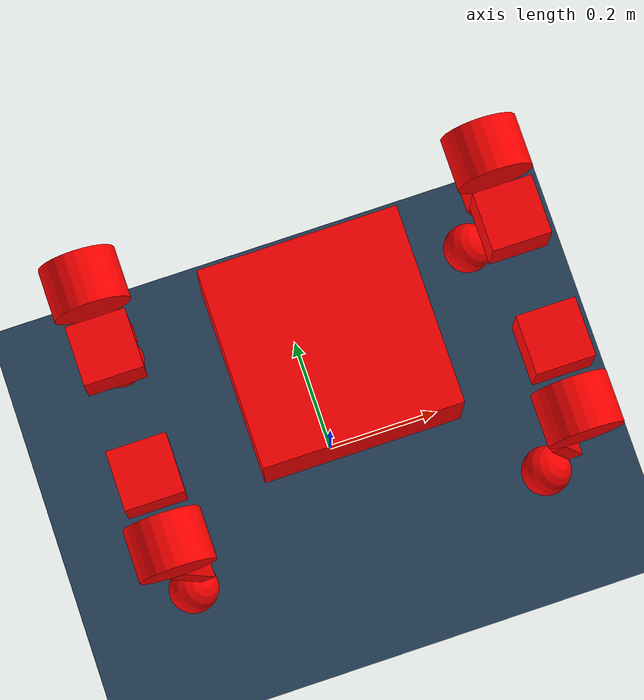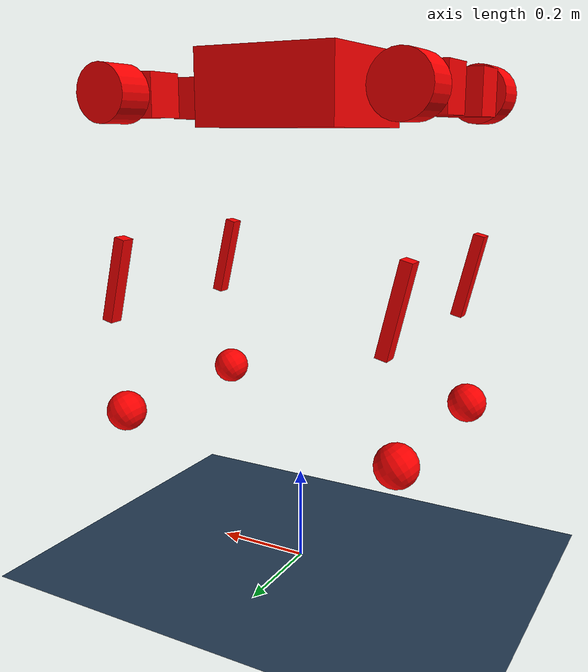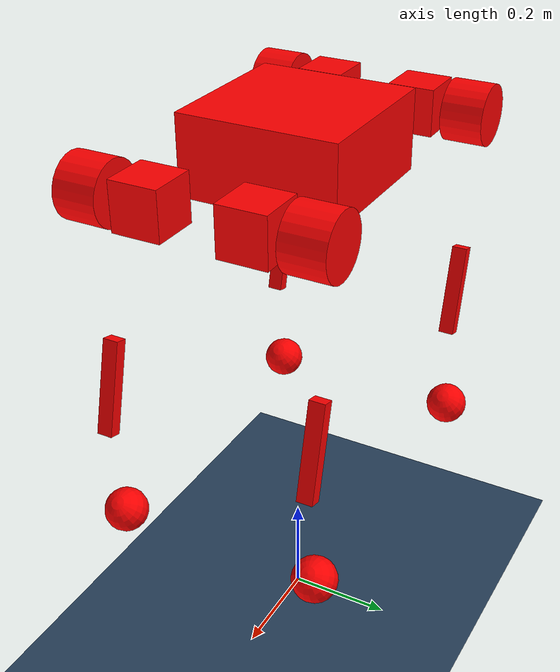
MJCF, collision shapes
<mujoco model="hje">
  <compiler angle="radian" meshdir="meshes/" />
  <option iterations="1" ls_iterations="5" timestep="0.002" integrator="Euler">
      <flag eulerdamp="disable"/>
  </option>

  <asset>
    <mesh name="base_link.obj" file="base_link.obj" />
    <mesh name="FL_HIP_LINK.obj" file="FL_HIP_LINK.obj" />
    <mesh name="FL_THIGH_LINK.obj" file="FL_THIGH_LINK.obj" />
    <mesh name="FL_CALF_LINK.obj" file="FL_CALF_LINK.obj" />
    <mesh name="FL_FOOT_LINK.obj" file="FL_FOOT_LINK.obj" />
    <mesh name="FR_HIP_LINK.obj" file="FR_HIP_LINK.obj" />
    <mesh name="FR_THIGH_LINK.obj" file="FR_THIGH_LINK.obj" />
    <mesh name="FR_CALF_LINK.obj" file="FR_CALF_LINK.obj" />
    <mesh name="FR_FOOT_LINK.obj" file="FR_FOOT_LINK.obj" />
    <mesh name="RL_HIP_LINK.obj" file="RL_HIP_LINK.obj" />
    <mesh name="RL_THIGH_LINK.obj" file="RL_THIGH_LINK.obj" />
    <mesh name="RL_CALF_LINK.obj" file="RL_CALF_LINK.obj" />
    <mesh name="RL_FOOT_LINK.obj" file="RL_FOOT_LINK.obj" />
    <mesh name="RR_HIP_LINK.obj" file="RR_HIP_LINK.obj" />
    <mesh name="RR_THIGH_LINK.obj" file="RR_THIGH_LINK.obj" />
    <mesh name="RR_CALF_LINK.obj" file="RR_CALF_LINK.obj" />
    <mesh name="RR_FOOT_LINK.obj" file="RR_FOOT_LINK.obj" />
    <mesh name="SHEET_METAL_LINK.obj" file="SHEET_METAL_LINK.obj" />
    <texture type="skybox" builtin="flat" rgb1="0 0 0" rgb2="0 0 0" width="512" height="3072"/>
    <texture type="2d" name="groundplane" builtin="checker" mark="edge" rgb1="0.2 0.3 0.4" rgb2="0.1 0.2 0.3" markrgb="0.8 0.8 0.8" width="300" height="300"/>
    <material name="groundplane" texture="groundplane" texuniform="true" texrepeat="5 5" reflectance="0.2"/>
  </asset>

  <worldbody>
    <light pos="0 0 10" dir="0 0 -1" diffuse="1 1 1"/>
    <light directional="true" diffuse=".8 .8 .8" pos="0 0 10" dir="0 0 -10"/>
    <geom name="floor" size="0 0 0.05" type="plane" material="groundplane" contype="0" conaffinity="1"/>

    <body name="base_link" pos="0 0 1" euler="0 0 0">
      <site name="imu" pos="0.0 0.0 0.0" group="5"/>
      <inertial pos="0 0 0" mass="21.304" diaginertia="0.1761 0.7064 0.8199"/>
      <freejoint name="root"/>
      <geom pos="0.0000 0.0000 0.0000" euler="0.0000 0.0000 0.0000" rgba="0.8667 0.9059 1.0000 1.0" group="1" type="mesh" mesh="base_link.obj" contype="0" conaffinity="0"/>
      <geom pos="0.0000 0.0000 0.0100" euler="0.0000 0.0000 0.0000" rgba="1 0 0 0.5" group="3" type="box" size="0.1500 0.1500 0.0750" />
      <body name="FL_HIP_LINK" pos="0.3085 0.0750 0.0000" euler="0.0000 0.0000 0.0000">
        <joint name="FL_HIP_JOINT" type="hinge" axis="1.0000 0.0000 0.0000" range="-1.01 1.01" damping="0" frictionloss="0"/>
        <inertial pos="0 0 0" mass="1.6116" diaginertia="0.0010 0.0021 0.0016"/>
        <geom pos="0.0000 0.0000 0.0000" euler="0.0000 0.0000 0.0000" rgba="0.8667 0.9059 1.0000 1.0" group="1" type="mesh" mesh="FL_HIP_LINK.obj" contype="0" conaffinity="0"/>
        <geom pos="0.0000 0.0200 0.0000" euler="0.0000 0.0000 0.0000" rgba="1 0 0 0.5" group="3" type="box" size="0.0450 0.0450 0.0450" />
        <body name="FL_THIGH_LINK" pos="0.0000 0.1250 0.0000" euler="0.0000 0.0000 0.0000">
          <joint name="FL_THIGH_JOINT" type="hinge" axis="0.0000 1.0000 0.0000" range="-2.36 3.14" damping="0" frictionloss="0"/>
          <inertial pos="0 0 0" mass="2.8949" diaginertia="0.0258 0.0258 0.0046"/>
          <geom pos="0.0000 0.0000 0.0000" euler="0.0000 0.0000 0.0000" rgba="0.8667 0.9059 1.0000 1.0" group="1" type="mesh" mesh="FL_THIGH_LINK.obj" contype="0" conaffinity="0"/>
          <geom pos="0.0000 0.0000 0.0000" euler="1.5710 0.0000 0.0000" rgba="1 0 0 0.5" group="3" type="cylinder" size="0.0580 0.0400" />
          <body name="FL_CALF_LINK" pos="0.0017 0.0000 -0.3300" euler="0.0000 0.0000 0.0000">
            <joint name="FL_CALF_JOINT" type="hinge" axis="0.0000 1.0000 0.0000" range="-2.8 -0.39" damping="0" frictionloss="0"/>
            <inertial pos="0 0 0" mass="0.4051" diaginertia="0.0040 0.0041 0.0001"/>
            <geom pos="0.0000 0.0000 0.0000" euler="0.0000 0.0000 0.0000" rgba="0.7922 0.8196 0.9294 1.0" group="1" type="mesh" mesh="FL_CALF_LINK.obj" contype="0" conaffinity="0"/>
            <geom pos="0.0100 0.0000 -0.0400" euler="0.0000 -0.2400 0.0000" rgba="1 0 0 0.5" group="3" type="box" size="0.0120 0.0150 0.0900" />
            <body name="FL_FOOT_LINK" pos="0.0023 0.0000 -0.3217" euler="0.0000 0.6573 0.0000">
              <inertial pos="0 0 0" mass="0.0673" diaginertia="0.0000 0.0000 0.0000"/>
              <geom pos="0.0000 0.0000 0.0000" euler="0.0000 0.0000 0.0000" rgba="0.7922 0.8196 0.9294 1.0" group="1" type="mesh" mesh="FL_FOOT_LINK.obj" contype="0" conaffinity="0"/>
              <geom pos="0.0000 0.0000 0.0000" euler="0.0000 0.0000 0.0000" rgba="1 0 0 0.5" group="3" type="sphere" size="0.0420" contype="1" conaffinity="0"/>
            </body>
          </body>
        </body>
      </body>
      <body name="FR_HIP_LINK" pos="0.3085 -0.0750 0.0000" euler="0.0000 0.0000 0.0000">
        <joint name="FR_HIP_JOINT" type="hinge" axis="1.0000 0.0000 0.0000" range="-1.01 1.01" damping="0" frictionloss="0"/>
        <inertial pos="0 0 0" mass="1.6116" diaginertia="0.0010 0.0021 0.0016"/>
        <geom pos="0.0000 0.0000 0.0000" euler="0.0000 0.0000 0.0000" rgba="0.8667 0.9059 1.0000 1.0" group="1" type="mesh" mesh="FR_HIP_LINK.obj" contype="0" conaffinity="0"/>
        <geom pos="0.0000 -0.0200 0.0000" euler="0.0000 0.0000 0.0000" rgba="1 0 0 0.5" group="3" type="box" size="0.0450 0.0450 0.0450" />
        <body name="FR_THIGH_LINK" pos="0.0000 -0.1250 0.0000" euler="0.0000 0.0000 0.0000">
          <joint name="FR_THIGH_JOINT" type="hinge" axis="0.0000 1.0000 0.0000" range="-2.36 3.14" damping="0" frictionloss="0"/>
          <inertial pos="0 0 0" mass="2.8949" diaginertia="0.0258 0.0258 0.0046"/>
          <geom pos="0.0000 0.0000 0.0000" euler="0.0000 0.0000 0.0000" rgba="0.8667 0.9059 1.0000 1.0" group="1" type="mesh" mesh="FR_THIGH_LINK.obj" contype="0" conaffinity="0"/>
          <geom pos="0.0000 0.0000 0.0000" euler="1.5710 0.0000 0.0000" rgba="1 0 0 0.5" group="3" type="cylinder" size="0.0580 0.0400" />
          <body name="FR_CALF_LINK" pos="0.0017 0.0000 -0.3300" euler="0.0000 0.0000 0.0000">
            <joint name="FR_CALF_JOINT" type="hinge" axis="0.0000 1.0000 0.0000" range="-2.8 -0.39" damping="0" frictionloss="0"/>
            <inertial pos="0 0 0" mass="0.4051" diaginertia="0.0040 0.0041 0.0001"/>
            <geom pos="0.0000 0.0000 0.0000" euler="0.0000 0.0000 0.0000" rgba="0.7922 0.8196 0.9294 1.0" group="1" type="mesh" mesh="FR_CALF_LINK.obj" contype="0" conaffinity="0"/>
            <geom pos="0.0100 0.0000 -0.0400" euler="0.0000 -0.2400 0.0000" rgba="1 0 0 0.5" group="3" type="box" size="0.0120 0.0150 0.0900" />
            <body name="FR_FOOT_LINK" pos="0.0023 0.0000 -0.3217" euler="0.0000 0.6573 0.0000">
              <inertial pos="0 0 0" mass="0.0673" diaginertia="0.0000 0.0000 0.0000"/>
              <geom pos="0.0000 0.0000 0.0000" euler="0.0000 0.0000 0.0000" rgba="0.7922 0.8196 0.9294 1.0" group="1" type="mesh" mesh="FR_FOOT_LINK.obj" contype="0" conaffinity="0"/>
              <geom pos="0.0000 0.0000 0.0000" euler="0.0000 0.0000 0.0000" rgba="1 0 0 0.5" group="3" type="sphere" size="0.0420" contype="1" conaffinity="0"/>
            </body>
          </body>
        </body>
      </body>
      <body name="RL_HIP_LINK" pos="-0.3085 0.0750 0.0000" euler="0.0000 0.0000 0.0000">
        <joint name="RL_HIP_JOINT" type="hinge" axis="1.0000 0.0000 0.0000" range="-1.01 1.01" damping="0" frictionloss="0"/>
        <inertial pos="0 0 0" mass="1.6116" diaginertia="0.0010 0.0021 0.0016"/>
        <geom pos="0.0000 0.0000 0.0000" euler="0.0000 0.0000 0.0000" rgba="0.7922 0.8196 0.9294 1.0" group="1" type="mesh" mesh="RL_HIP_LINK.obj" contype="0" conaffinity="0"/>
        <geom pos="0.0000 0.0200 0.0000" euler="0.0000 0.0000 0.0000" rgba="1 0 0 0.5" group="3" type="box" size="0.0450 0.0450 0.0450" />
        <body name="RL_THIGH_LINK" pos="0.0000 0.1250 0.0000" euler="0.0000 0.0000 0.0000">
          <joint name="RL_THIGH_JOINT" type="hinge" axis="0.0000 1.0000 0.0000" range="-2.36 3.14" damping="0" frictionloss="0"/>
          <inertial pos="0 0 0" mass="2.8949" diaginertia="0.0258 0.0258 0.0046"/>
          <geom pos="0.0000 0.0000 0.0000" euler="0.0000 0.0000 0.0000" rgba="0.8667 0.9059 1.0000 1.0" group="1" type="mesh" mesh="RL_THIGH_LINK.obj" contype="0" conaffinity="0"/>
          <geom pos="0.0000 0.0000 0.0000" euler="1.5710 0.0000 0.0000" rgba="1 0 0 0.5" group="3" type="cylinder" size="0.0580 0.0400" />
          <body name="RL_CALF_LINK" pos="0.0017 0.0000 -0.3300" euler="0.0000 0.0000 0.0000">
            <joint name="RL_CALF_JOINT" type="hinge" axis="0.0000 1.0000 0.0000" range="-2.8 -0.39" damping="0" frictionloss="0"/>
            <inertial pos="0 0 0" mass="0.4051" diaginertia="0.0040 0.0041 0.0001"/>
            <geom pos="0.0000 0.0000 0.0000" euler="0.0000 0.0000 0.0000" rgba="0.7922 0.8196 0.9294 1.0" group="1" type="mesh" mesh="RL_CALF_LINK.obj" contype="0" conaffinity="0"/>
            <geom pos="0.0100 0.0000 -0.0400" euler="0.0000 -0.2400 0.0000" rgba="1 0 0 0.5" group="3" type="box" size="0.0120 0.0150 0.0900" />
            <body name="RL_FOOT_LINK" pos="0.0023 0.0000 -0.3217" euler="0.0000 0.6573 0.0000">
              <inertial pos="0 0 0" mass="0.0673" diaginertia="0.0000 0.0000 0.0000"/>
              <geom pos="0.0000 0.0000 0.0000" euler="0.0000 0.0000 0.0000" rgba="0.7922 0.8196 0.9294 1.0" group="1" type="mesh" mesh="RL_FOOT_LINK.obj" contype="0" conaffinity="0"/>
              <geom pos="0.0000 0.0000 0.0000" euler="0.0000 0.0000 0.0000" rgba="1 0 0 0.5" group="3" type="sphere" size="0.0420" contype="1" conaffinity="0"/>
            </body>
          </body>
        </body>
      </body>
      <body name="RR_HIP_LINK" pos="-0.3085 -0.0750 0.0000" euler="0.0000 0.0000 0.0000">
        <joint name="RR_HIP_JOINT" type="hinge" axis="1.0000 0.0000 0.0000" range="-1.01 1.01" damping="0" frictionloss="0"/>
        <inertial pos="0 0 0" mass="1.6116" diaginertia="0.0010 0.0021 0.0016"/>
        <geom pos="0.0000 0.0000 0.0000" euler="0.0000 0.0000 0.0000" rgba="0.8667 0.9059 1.0000 1.0" group="1" type="mesh" mesh="RR_HIP_LINK.obj" contype="0" conaffinity="0"/>
        <geom pos="0.0000 -0.0200 0.0000" euler="0.0000 0.0000 0.0000" rgba="1 0 0 0.5" group="3" type="box" size="0.0450 0.0450 0.0450" />
        <body name="RR_THIGH_LINK" pos="0.0000 -0.1250 0.0000" euler="0.0000 0.0000 0.0000">
          <joint name="RR_THIGH_JOINT" type="hinge" axis="0.0000 1.0000 0.0000" range="-2.36 3.14" damping="0" frictionloss="0"/>
          <inertial pos="0 0 0" mass="2.8949" diaginertia="0.0258 0.0258 0.0046"/>
          <geom pos="0.0000 0.0000 0.0000" euler="0.0000 0.0000 0.0000" rgba="0.8667 0.9059 1.0000 1.0" group="1" type="mesh" mesh="RR_THIGH_LINK.obj" contype="0" conaffinity="0"/>
          <geom pos="0.0000 0.0000 0.0000" euler="1.5710 0.0000 0.0000" rgba="1 0 0 0.5" group="3" type="cylinder" size="0.0580 0.0400" />
          <body name="RR_CALF_LINK" pos="0.0017 0.0000 -0.3300" euler="0.0000 0.0000 0.0000">
            <joint name="RR_CALF_JOINT" type="hinge" axis="0.0000 1.0000 0.0000" range="-2.8 -0.39" damping="0" frictionloss="0"/>
            <inertial pos="0 0 0" mass="0.4051" diaginertia="0.0040 0.0041 0.0001"/>
            <geom pos="0.0000 0.0000 0.0000" euler="0.0000 0.0000 0.0000" rgba="0.8667 0.9059 1.0000 1.0" group="1" type="mesh" mesh="RR_CALF_LINK.obj" contype="0" conaffinity="0"/>
            <geom pos="0.0100 0.0000 -0.0400" euler="0.0000 -0.2400 0.0000" rgba="1 0 0 0.5" group="3" type="box" size="0.0120 0.0150 0.0900" />
            <body name="RR_FOOT_LINK" pos="0.0023 0.0000 -0.3217" euler="0.0000 0.6573 0.0000">
              <inertial pos="0 0 0" mass="0.0673" diaginertia="0.0000 0.0000 0.0000"/>
              <geom pos="0.0000 0.0000 0.0000" euler="0.0000 0.0000 0.0000" rgba="0.7922 0.8196 0.9294 1.0" group="1" type="mesh" mesh="RR_FOOT_LINK.obj" contype="0" conaffinity="0"/>
              <geom pos="0.0000 0.0000 0.0000" euler="0.0000 0.0000 0.0000" rgba="1 0 0 0.5" group="3" type="sphere" size="0.0420" contype="1" conaffinity="0"/>
            </body>
          </body>
        </body>
      </body>
      <body name="SHEET_METAL_LINK" pos="0.0000 0.0000 0.0000" euler="0.0000 0.0000 0.0000">
        <inertial pos="0 0 0" mass="0.97076" diaginertia="0.0090 0.0115 0.0198"/>
        <geom pos="0.0000 0.0000 0.0000" euler="0.0000 0.0000 0.0000" rgba="0.7725 0.7529 0.7333 1.0" group="1" type="mesh" mesh="SHEET_METAL_LINK.obj" contype="0" conaffinity="0"/>
      </body>
    </body>
  </worldbody>

  <actuator>
      <motor ctrlrange="-100.0 100.0" name="FR_HIP" joint="FR_HIP_JOINT"/>
      <motor ctrlrange="-150.0 150.0" name="FR_THIGH" joint="FR_THIGH_JOINT"/>
      <motor ctrlrange="-150.0 150.0" name="FR_CALF" joint="FR_CALF_JOINT"/>
      <motor ctrlrange="-100.0 100.0" name="FL_HIP" joint="FL_HIP_JOINT"/>
      <motor ctrlrange="-150.0 150.0" name="FL_THIGH" joint="FL_THIGH_JOINT"/>
      <motor ctrlrange="-150.0 150.0" name="FL_CALF" joint="FL_CALF_JOINT"/>
      <motor ctrlrange="-100.0 100.0" name="RR_HIP" joint="RR_HIP_JOINT"/>
      <motor ctrlrange="-150.0 150.0" name="RR_THIGH" joint="RR_THIGH_JOINT"/>
      <motor ctrlrange="-150.0 150.0" name="RR_CALF" joint="RR_CALF_JOINT"/>
      <motor ctrlrange="-100.0 100.0" name="RL_HIP" joint="RL_HIP_JOINT"/>
      <motor ctrlrange="-150.0 150.0" name="RL_THIGH" joint="RL_THIGH_JOINT"/>
      <motor ctrlrange="-150.0 150.0" name="RL_CALF" joint="RL_CALF_JOINT"/>
  </actuator>

  <sensor>
      <jointpos name="FR_HIP_POS" joint="FR_HIP_JOINT"/>
      <jointpos name="FR_THIGH_POS" joint="FR_THIGH_JOINT"/>
      <jointpos name="FR_CALF_POS" joint="FR_CALF_JOINT"/>
      <jointpos name="FL_HIP_POS" joint="FL_HIP_JOINT"/>
      <jointpos name="FL_THIGH_POS" joint="FL_THIGH_JOINT"/>
      <jointpos name="FL_CALF_POS" joint="FL_CALF_JOINT"/>
      <jointpos name="RR_HIP_POS" joint="RR_HIP_JOINT"/>
      <jointpos name="RR_THIGH_POS" joint="RR_THIGH_JOINT"/>
      <jointpos name="RR_CALF_POS" joint="RR_CALF_JOINT"/>
      <jointpos name="RL_HIP_POS" joint="RL_HIP_JOINT"/>
      <jointpos name="RL_THIGH_POS" joint="RL_THIGH_JOINT"/>
      <jointpos name="RL_CALF_POS" joint="RL_CALF_JOINT"/>

      <jointvel name="FR_HIP_VEL" joint="FR_HIP_JOINT"/>
      <jointvel name="FR_THIGH_VEL" joint="FR_THIGH_JOINT"/>
      <jointvel name="FR_CALF_VEL" joint="FR_CALF_JOINT"/>
      <jointvel name="FL_HIP_VEL" joint="FL_HIP_JOINT"/>
      <jointvel name="FL_THIGH_VEL" joint="FL_THIGH_JOINT"/>
      <jointvel name="FL_CALF_VEL" joint="FL_CALF_JOINT"/>
      <jointvel name="RR_HIP_VEL" joint="RR_HIP_JOINT"/>
      <jointvel name="RR_THIGH_VEL" joint="RR_THIGH_JOINT"/>
      <jointvel name="RR_CALF_VEL" joint="RR_CALF_JOINT"/>
      <jointvel name="RL_HIP_VEL" joint="RL_HIP_JOINT"/>
      <jointvel name="RL_THIGH_VEL" joint="RL_THIGH_JOINT"/>
      <jointvel name="RL_CALF_VEL" joint="RL_CALF_JOINT"/>

      <jointactuatorfrc name="FR_HIP_TORQUE" joint="FR_HIP_JOINT" noise="0.01"/>
      <jointactuatorfrc name="FR_THIGH_TORQUE" joint="FR_THIGH_JOINT" noise="0.01"/>
      <jointactuatorfrc name="FR_CALF_TORQUE" joint="FR_CALF_JOINT" noise="0.01"/>
      <jointactuatorfrc name="FL_HIP_TORQUE" joint="FL_HIP_JOINT" noise="0.01"/>
      <jointactuatorfrc name="FL_THIGH_TORQUE" joint="FL_THIGH_JOINT" noise="0.01"/>
      <jointactuatorfrc name="FL_CALF_TORQUE" joint="FL_CALF_JOINT" noise="0.01"/>
      <jointactuatorfrc name="RR_HIP_TORQUE" joint="RR_HIP_JOINT" noise="0.01"/>
      <jointactuatorfrc name="RR_THIGH_TORQUE" joint="RR_THIGH_JOINT" noise="0.01"/>
      <jointactuatorfrc name="RR_CALF_TORQUE" joint="RR_CALF_JOINT" noise="0.01"/>
      <jointactuatorfrc name="RL_HIP_TORQUE" joint="RL_HIP_JOINT" noise="0.01"/>
      <jointactuatorfrc name="RL_THIGH_TORQUE" joint="RL_THIGH_JOINT" noise="0.01"/>
      <jointactuatorfrc name="RL_CALF_TORQUE" joint="RL_CALF_JOINT" noise="0.01"/>

      <framequat name="imu_quat" objtype="site" objname="imu"/>
      <gyro name="imu_gyro" site="imu"/>
      <accelerometer name="imu_acc" site="imu"/>

      <framepos name="frame_pos" objtype="site" objname="imu"/>
      <framelinvel name="frame_vel" objtype="site" objname="imu"/>
  </sensor>

</mujoco>
